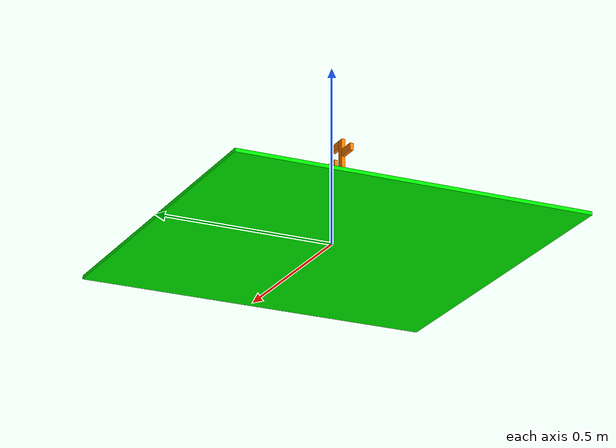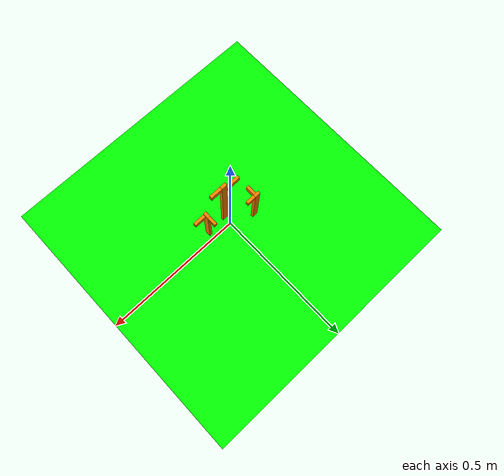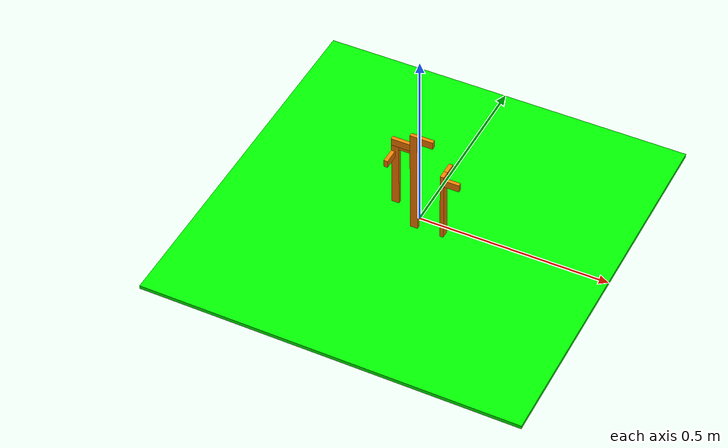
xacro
<?xml version="1.0"?>
<robot xmlns:xacro="http://www.ros.org/wiki/xacro" name="scene_mingruiyu_0">
  <xacro:property name="PI" value="3.1415926535897931" />

  <!-- Include statements for macros -->
  <xacro:include filename="rectangle_pole_macro.xacro"/>

  <!-- GROUND PLANE -->
  <link name="ground_plane">
    <visual>
      <geometry>
        <box size="1 1 0.01"/>
      </geometry>
      <origin xyz="0 0 -0.005" rpy="0 0 0"/>
      <material name="green"/>
    </visual>
    <collision>
      <geometry>
        <box size="1 1 0.01"/>
      </geometry>
      <origin xyz="0 0 -0.005" rpy="0 0 0"/>
    </collision>
  </link>

  <!-- OBSTACLES (created from rectangle poles) -->
  <!-- Creted link has the name: prefix+"_root_link" -->

  <!-- ====================== POLE 1 : BEGIN ====================== -->
  <!-- MAIN SHAFT -->
  <xacro:rectangle_pole prefix="pole_1" parent_link="ground_plane" length="0.3" thickness_x="0.02" thickness_y="0.01">
    <origin xyz="0.0 -0.03 0.0" rpy="0 0 0"/>
  </xacro:rectangle_pole>

  <!-- ATTACHMENT 1. TOWARDS +X AXIS  -->
  <!-- Creted link has the name: prefix+"_root_link" -->
  <xacro:rectangle_pole prefix="pole_1_attachment_1" parent_link="pole_1_root_link" length="0.04" thickness_x="0.02" thickness_y="0.01">
    <origin xyz="0.01 0.0 0.29" rpy="0 ${PI/2.0} 0"/>
  </xacro:rectangle_pole>

  <!-- ATTACHMENT 2. TOWARDS -X AXIS  -->
  <!-- Creted link has the name: prefix+"_root_link" -->
  <xacro:rectangle_pole prefix="pole_1_attachment_2" parent_link="pole_1_root_link" length="0.05" thickness_x="0.02" thickness_y="0.01">
    <origin xyz="-0.01 0.0 0.26" rpy="0 ${-PI/2.0} 0"/>
  </xacro:rectangle_pole>
  <!-- ====================== POLE 1 : END ====================== -->

  <!-- ====================== POLE 2 : BEGIN ====================== -->
  <!-- MAIN SHAFT -->
  <xacro:rectangle_pole prefix="pole_2" parent_link="ground_plane" length="0.2" thickness_x="0.01" thickness_y="0.02">
    <origin xyz="0.075 -0.025 0.0" rpy="0 0 0"/>
  </xacro:rectangle_pole>

  <!-- ATTACHMENT 1. TOWARDS +X AXIS  -->
  <!-- Creted link has the name: prefix+"_root_link" -->
  <xacro:rectangle_pole prefix="pole_2_attachment_1" parent_link="pole_2_root_link" length="0.04" thickness_x="0.02" thickness_y="0.01">
    <origin xyz="0.005 -0.005 0.18" rpy="0 ${PI/2.0} 0"/>
  </xacro:rectangle_pole>

  <!-- ATTACHMENT 2. TOWARDS +Y AXIS  -->
  <!-- Creted link has the name: prefix+"_root_link" -->
  <xacro:rectangle_pole prefix="pole_2_attachment_2" parent_link="pole_2_root_link" length="0.03" thickness_x="0.01" thickness_y="0.02">
    <origin xyz="0.0 0.01 0.19" rpy="${-PI/2.0} 0 0"/>
  </xacro:rectangle_pole>

  <!-- ====================== POLE 2 : END ====================== -->

  <!-- ====================== POLE 3 : BEGIN ====================== -->
  <!-- MAIN SHAFT -->
  <!-- 90 degrees Clockwise rotated version of pole 2 around z-axis -->
  <xacro:rectangle_pole prefix="pole_3" parent_link="ground_plane" length="0.2" thickness_x="0.01" thickness_y="0.02">
    <origin xyz="-0.08 0.03 0.0" rpy="0 0 ${-PI/2.0}"/>
  </xacro:rectangle_pole>

  <!-- ATTACHMENT 1. TOWARDS -Y AXIS -->
  <xacro:rectangle_pole prefix="pole_3_attachment_1" parent_link="pole_3_root_link" length="0.04" thickness_x="0.02" thickness_y="0.01">
    <origin xyz="0.005 -0.005 0.16" rpy="0 ${PI/2.0} 0"/>
  </xacro:rectangle_pole>

  <!-- ATTACHMENT 2. TOWARDS -X AXIS -->
  <xacro:rectangle_pole prefix="pole_3_attachment_2" parent_link="pole_3_root_link" length="0.03" thickness_x="0.01" thickness_y="0.02">
    <origin xyz="0.0 0.01 0.19" rpy="${-PI/2.0} 0 0"/>
  </xacro:rectangle_pole>

  <!-- ====================== POLE 3 : END ====================== -->
</robot>

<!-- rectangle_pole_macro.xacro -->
<robot xmlns:xacro="http://www.ros.org/wiki/xacro">
    <xacro:include filename="materials.xacro"/>

    <xacro:macro name="rectangle_pole" params="prefix parent_link length thickness_x thickness_y *root_pose">
        <link name="${prefix}_root_link">
            <visual>
                <geometry>
                    <box size="${thickness_x} ${thickness_y} ${length}"/>
                </geometry>
                <origin xyz="0 0 ${length / 2.0}" rpy="0 0 0"/>
                <material name="orange"/>
            </visual>
            <collision>
                <geometry>
                    <box size="${thickness_x} ${thickness_y} ${length}"/>
                </geometry>
                <origin xyz="0 0 ${length / 2.0}" rpy="0 0 0"/>
            </collision>
        </link>

        <joint name="${prefix}_fixture_joint" type="fixed">
            <parent link="${parent_link}"/>
            <child link="${prefix}_root_link" />
            <xacro:insert_block name="root_pose" />
        </joint>

    </xacro:macro>
</robot>

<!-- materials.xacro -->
<robot>
  <material name="dark_gray"><color rgba="0.2 0.2 0.2 1.0" /></material>
  <material name="gray"><color rgba="0.3 0.3 0.3 1.0" /></material>
  <material name="light_gray"><color rgba="0.4 0.4 0.4 1.0" /></material>
  <material name="yellow"><color rgba="0.8 0.8 0.0 1.0" /></material>
  <material name="orange"><color rgba="1.0 0.5 0.0 1.0" /></material>
  <material name="green"><color rgba="0.0 1.0 0.0 1.0" /></material>
  <material name="teal"><color rgba="0.0 1.0 1.0 1.0" /></material>
  <material name="black"><color rgba="0.15 0.15 0.15 1.0" /></material>
</robot>
